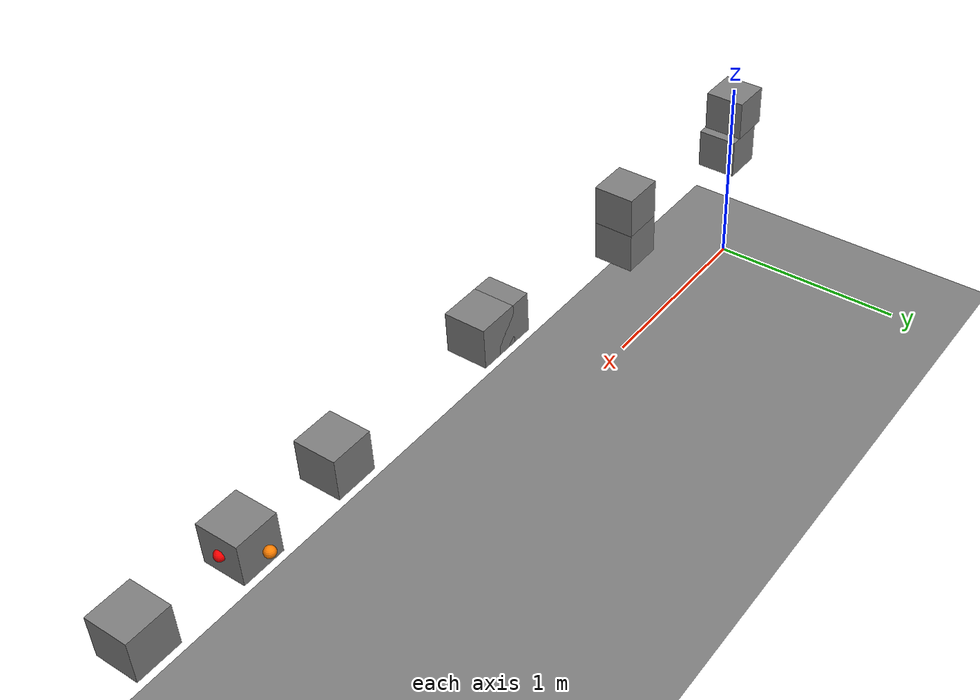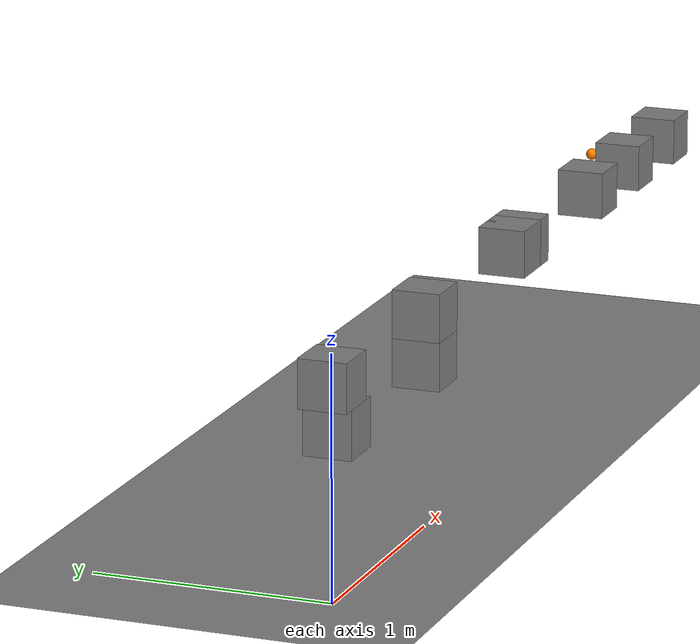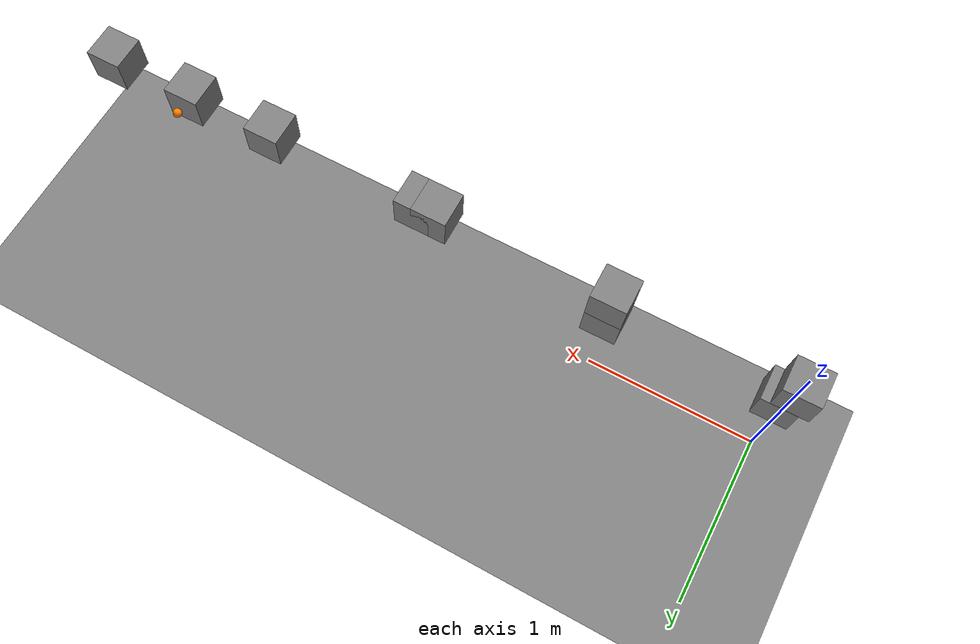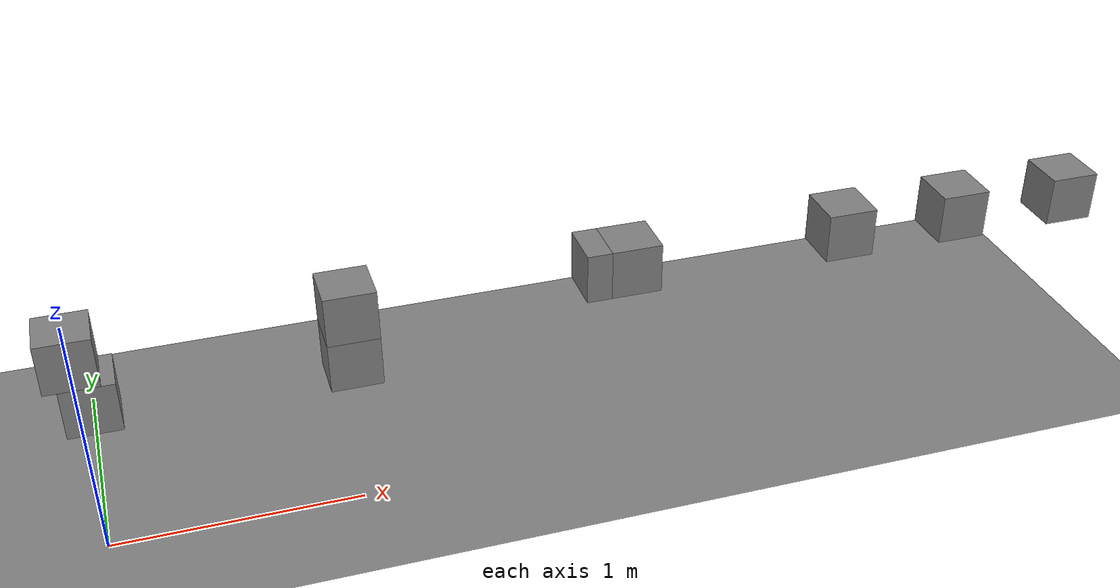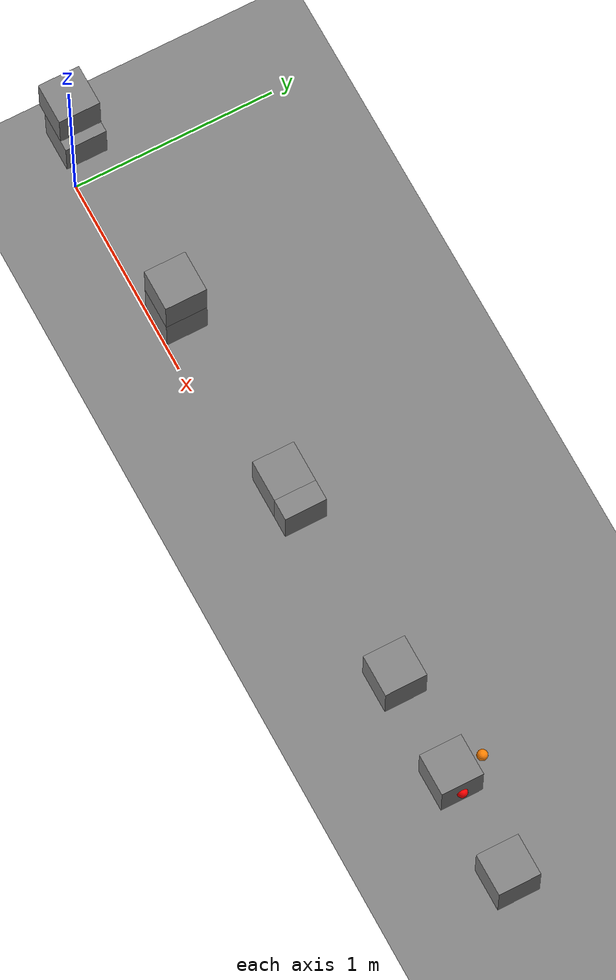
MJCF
<mujoco model="equality_connect_attributes">
  <worldbody>
    <!-- Ground plane so bodies don't fall forever -->
    <geom name="ground" type="plane" size="10 10 0.1" pos="0 0 0"/>
    <!-- Pinned bodies (connect to world) stay at z=0.9; connected bodies hang below them -->
    <!-- Body-based connect: body0 pinned, body1 hangs from body0's anchor -->
    <body name="body0" pos="0 0 0.9">
      <geom type="box" size="0.1 0.1 0.1"/>
      <site name="anchor_custom_connect" pos="0.05 0 0" size="0.025" rgba="1 0 0 1"/>
      <freejoint/>
    </body>
    <body name="body1" pos="0.05 0 0.7">
      <geom type="box" size="0.1 0.1 0.1"/>
      <freejoint/>
    </body>
    <!-- Default connect: body2 pinned, body3 hangs from body2 center -->
    <body name="body2" pos="1 0 0.9">
      <geom type="box" size="0.1 0.1 0.1"/>
      <site name="anchor_default_connect" pos="0 0 0" size="0.025" rgba="1 0 0 1"/>
      <freejoint/>
    </body>
    <body name="body3" pos="1 0 0.7">
      <geom type="box" size="0.1 0.1 0.1"/>
      <freejoint/>
    </body>
    <!-- Site-based connect: body4 pinned, body5 hangs from site4-site5 link -->
    <body name="body4" pos="2 0 0.9">
      <geom type="box" size="0.1 0.1 0.1"/>
      <site name="site4" pos="0.05 0 0" size="0.025" rgba="0 0.8 0 1"/>
      <freejoint/>
    </body>
    <!-- body5 initial pos so site5 coincides with site4 at t=0 (2.05 0 0.9); then hangs -->
    <body name="body5" pos="2.1 0 0.9">
      <geom type="box" size="0.1 0.1 0.1"/>
      <site name="site5" pos="-0.05 0 0" size="0.025" rgba="0 0.8 0 1"/>
      <freejoint/>
    </body>
    <!-- Single body pinned to world (connect_to_world only) -->
    <body name="body6" pos="3 0 0.9">
      <geom type="box" size="0.1 0.1 0.1"/>
      <site name="anchor_connect_to_world" pos="0 0 0" size="0.025" rgba="1 0 0 1"/>
      <freejoint/>
    </body>
    <!-- Two connects between body7 and body8: body7 pinned, body8 held rigidly relative to it -->
    <body name="body7" pos="3.5 0 0.9">
      <geom type="box" size="0.1 0.1 0.1"/>
      <site name="anchor_connect_a" pos="0.1 0 0" size="0.025" rgba="1 0 0 1"/>
      <site name="anchor_connect_b" pos="0 0.15 0.02" size="0.025" rgba="1 0.5 0 1"/>
      <freejoint/>
    </body>
    <body name="body8" pos="4 0 0.9">
      <geom type="box" size="0.1 0.1 0.1"/>
      <freejoint/>
    </body>
  </worldbody>
  <equality>
    <!-- Pin body0 to world so it stays in the air; body1 hangs via custom_connect -->
    <connect name="pin_body0" body1="body0" anchor="0 0 0"/>
    <!-- Custom connect: body1 hangs from body0's anchor (0.05 0 0) -->
    <connect name="custom_connect"
             body1="body0"
             body2="body1"
             anchor="0.05 0 0"
             solimp="0.8 0.9 0.002 0.6 3"
             solref="0.03 0.8"/>
    <!-- Pin body2 to world; body3 hangs via default_connect -->
    <connect name="pin_body2" body1="body2" anchor="0 0 0"/>
    <!-- Default connect: body3 hangs from body2 center -->
    <connect name="default_connect"
             body1="body2"
             body2="body3"
             anchor="0 0 0"
             solimp="0.9 0.95 0.001 0.5 2"
             solref="0.02 1"/>
    <!-- Pin body4 to world; body5 hangs via site_connect -->
    <connect name="pin_body4" body1="body4" anchor="0 0 0"/>
    <!-- Site-based connect: body5 hangs from site4-site5 -->
    <connect name="site_connect"
             site1="site4"
             site2="site5"
             solimp="0.75 0.85 0.004 0.55 2.5"
             solref="0.025 0.9"/>
    <!-- Body6 pinned to world only -->
    <connect name="connect_to_world"
             body1="body6"
             anchor="0 0 0"/>
    <!-- Pin body7 to world; body8 held by two connects -->
    <connect name="pin_body7" body1="body7" anchor="0 0 0"/>
    <connect name="connect_anchor_a"
             body1="body7"
             body2="body8"
             anchor="0.1 0 0"
             solref="0.02 1"
             solimp="0.9 0.95 0.001 0.5 2"/>
    <connect name="connect_anchor_b"
             body1="body7"
             body2="body8"
             anchor="0 0.15 0.02"
             solref="0.02 1"
             solimp="0.9 0.95 0.001 0.5 2"/>
    <!-- Disabled connect: does not constrain -->
    <connect name="disabled_connect"
             body1="body2"
             body2="body3"
             anchor="0 0 0"
             active="false"/>
  </equality>
</mujoco>
